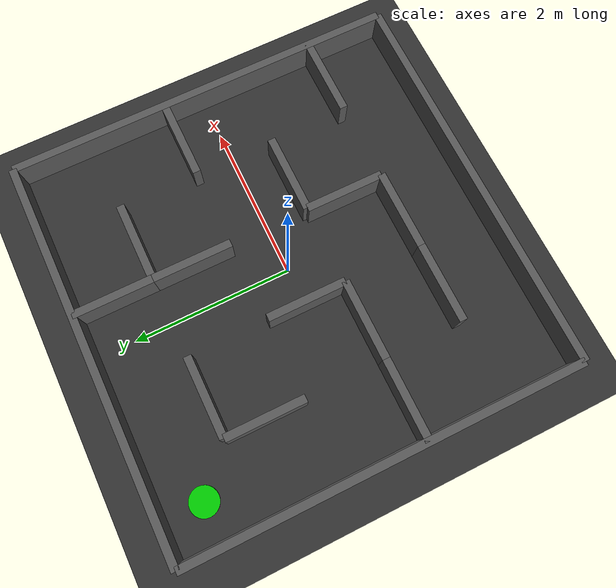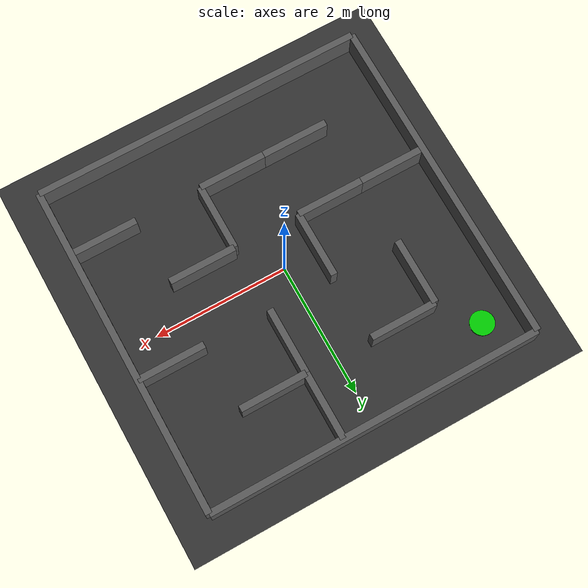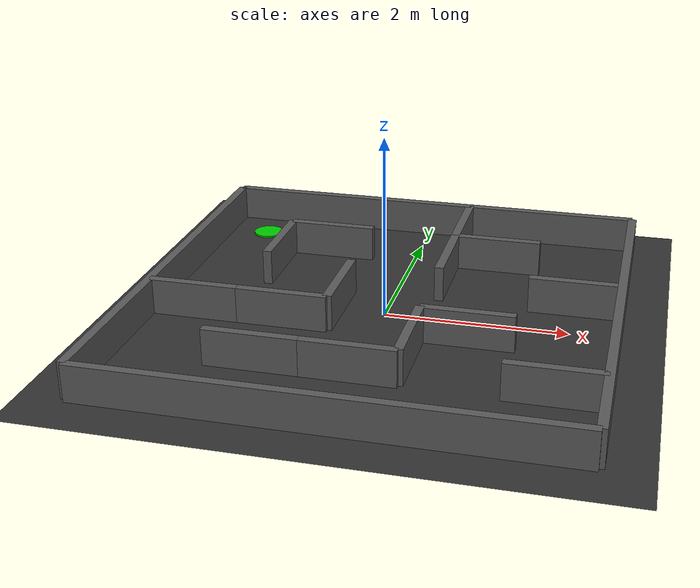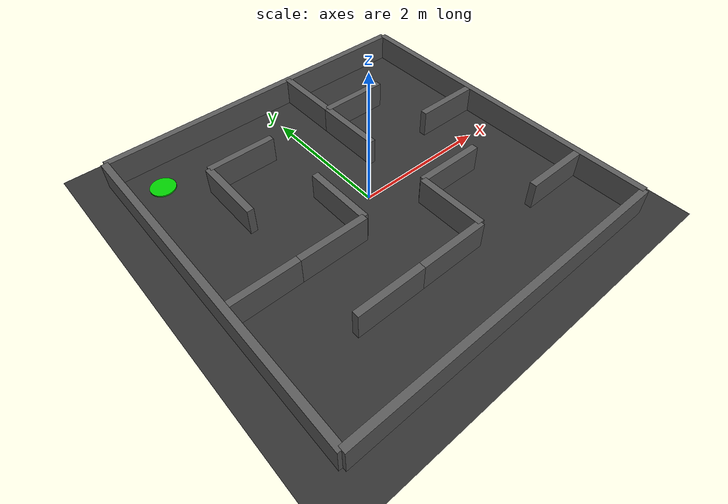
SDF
<?xml version="1.0" ?>
<sdf version="1.6">
  <world name="simple_maze_world">

    <physics name="1ms" type="ignored">
      <max_step_size>0.001</max_step_size>
      <real_time_factor>1.0</real_time_factor>
      <real_time_update_rate>1000</real_time_update_rate>
    </physics>

    <gravity>0 0 -9.8</gravity>
    <magnetic_field>6e-06 2.3e-05 -4.2e-05</magnetic_field>
    <atmosphere type='adiabatic'/>

    <scene>
      <ambient>0.4 0.4 0.4 1</ambient>
      <background>0.7 0.7 0.7 1</background>
      <shadows>true</shadows>
    </scene>

    <light type="directional" name="sun">
      <cast_shadows>true</cast_shadows>
      <pose>0 0 10 0 0 0</pose>
      <diffuse>0.8 0.8 0.8 1</diffuse>
      <specular>0.2 0.2 0.2 1</specular>
      <direction>-0.5 0.1 -0.9</direction>
    </light>

    <model name="ground_plane">
      <static>true</static>
      <link name="link">
        <collision name="collision">
          <geometry><plane><normal>0 0 1</normal><size>20 20</size></plane></geometry>
          <surface><friction><ode/></friction></surface>
        </collision>
        <visual name="visual">
          <geometry><plane><normal>0 0 1</normal><size>20 20</size></plane></geometry>
          <material><ambient>0.2 0.2 0.2 1</ambient><diffuse>0.2 0.2 0.2 1</diffuse></material>
        </visual>
      </link>
    </model>

    <!-- 5x5 maze. Cell size: 1.0 m. Outer bounds: +/-2.5 m. -->
    <!-- Start cell S is centered at (0, 0). Goal cell G is centered at (-2, 2). -->
    <!-- The segment above S at y=0.5, x=[-0.5, 0.5] is intentionally open. -->

    <model name="maze_wall_outer_north"><static>true</static><link name="link"><pose>0 2.5 0.2 0 0 0</pose><collision name="collision"><geometry><box><size>5.0 0.1 0.4</size></box></geometry></collision><visual name="visual"><geometry><box><size>5.0 0.1 0.4</size></box></geometry><material><ambient>0.35 0.35 0.35 1</ambient><diffuse>0.35 0.35 0.35 1</diffuse></material></visual></link></model>
    <model name="maze_wall_outer_south"><static>true</static><link name="link"><pose>0 -2.5 0.2 0 0 0</pose><collision name="collision"><geometry><box><size>5.0 0.1 0.4</size></box></geometry></collision><visual name="visual"><geometry><box><size>5.0 0.1 0.4</size></box></geometry><material><ambient>0.35 0.35 0.35 1</ambient><diffuse>0.35 0.35 0.35 1</diffuse></material></visual></link></model>
    <model name="maze_wall_outer_east"><static>true</static><link name="link"><pose>2.5 0 0.2 0 0 0</pose><collision name="collision"><geometry><box><size>0.1 5.0 0.4</size></box></geometry></collision><visual name="visual"><geometry><box><size>0.1 5.0 0.4</size></box></geometry><material><ambient>0.35 0.35 0.35 1</ambient><diffuse>0.35 0.35 0.35 1</diffuse></material></visual></link></model>
    <model name="maze_wall_outer_west"><static>true</static><link name="link"><pose>-2.5 0 0.2 0 0 0</pose><collision name="collision"><geometry><box><size>0.1 5.0 0.4</size></box></geometry></collision><visual name="visual"><geometry><box><size>0.1 5.0 0.4</size></box></geometry><material><ambient>0.35 0.35 0.35 1</ambient><diffuse>0.35 0.35 0.35 1</diffuse></material></visual></link></model>

    <model name="maze_wall_h_y1p5_xm1"><static>true</static><link name="link"><pose>-1.0 1.5 0.2 0 0 0</pose><collision name="collision"><geometry><box><size>1.0 0.1 0.4</size></box></geometry></collision><visual name="visual"><geometry><box><size>1.0 0.1 0.4</size></box></geometry><material><ambient>0.35 0.35 0.35 1</ambient><diffuse>0.35 0.35 0.35 1</diffuse></material></visual></link></model>
    <model name="maze_wall_h_y1p5_xp1"><static>true</static><link name="link"><pose>1.0 1.5 0.2 0 0 0</pose><collision name="collision"><geometry><box><size>1.0 0.1 0.4</size></box></geometry></collision><visual name="visual"><geometry><box><size>1.0 0.1 0.4</size></box></geometry><material><ambient>0.35 0.35 0.35 1</ambient><diffuse>0.35 0.35 0.35 1</diffuse></material></visual></link></model>

    <model name="maze_wall_h_y0p5_xp2"><static>true</static><link name="link"><pose>2.0 0.5 0.2 0 0 0</pose><collision name="collision"><geometry><box><size>1.0 0.1 0.4</size></box></geometry></collision><visual name="visual"><geometry><box><size>1.0 0.1 0.4</size></box></geometry><material><ambient>0.35 0.35 0.35 1</ambient><diffuse>0.35 0.35 0.35 1</diffuse></material></visual></link></model>

    <model name="maze_wall_h_ym0p5_xm2"><static>true</static><link name="link"><pose>-2.0 -0.5 0.2 0 0 0</pose><collision name="collision"><geometry><box><size>1.0 0.1 0.4</size></box></geometry></collision><visual name="visual"><geometry><box><size>1.0 0.1 0.4</size></box></geometry><material><ambient>0.35 0.35 0.35 1</ambient><diffuse>0.35 0.35 0.35 1</diffuse></material></visual></link></model>
    <model name="maze_wall_h_ym0p5_xm1"><static>true</static><link name="link"><pose>-1.0 -0.5 0.2 0 0 0</pose><collision name="collision"><geometry><box><size>1.0 0.1 0.4</size></box></geometry></collision><visual name="visual"><geometry><box><size>1.0 0.1 0.4</size></box></geometry><material><ambient>0.35 0.35 0.35 1</ambient><diffuse>0.35 0.35 0.35 1</diffuse></material></visual></link></model>
    <model name="maze_wall_h_ym0p5_xp1"><static>true</static><link name="link"><pose>1.0 -0.5 0.2 0 0 0</pose><collision name="collision"><geometry><box><size>1.0 0.1 0.4</size></box></geometry></collision><visual name="visual"><geometry><box><size>1.0 0.1 0.4</size></box></geometry><material><ambient>0.35 0.35 0.35 1</ambient><diffuse>0.35 0.35 0.35 1</diffuse></material></visual></link></model>

    <model name="maze_wall_h_ym1p5_xm1"><static>true</static><link name="link"><pose>-1.0 -1.5 0.2 0 0 0</pose><collision name="collision"><geometry><box><size>1.0 0.1 0.4</size></box></geometry></collision><visual name="visual"><geometry><box><size>1.0 0.1 0.4</size></box></geometry><material><ambient>0.35 0.35 0.35 1</ambient><diffuse>0.35 0.35 0.35 1</diffuse></material></visual></link></model>
    <model name="maze_wall_h_ym1p5_x0"><static>true</static><link name="link"><pose>0.0 -1.5 0.2 0 0 0</pose><collision name="collision"><geometry><box><size>1.0 0.1 0.4</size></box></geometry></collision><visual name="visual"><geometry><box><size>1.0 0.1 0.4</size></box></geometry><material><ambient>0.35 0.35 0.35 1</ambient><diffuse>0.35 0.35 0.35 1</diffuse></material></visual></link></model>
    <model name="maze_wall_h_ym1p5_xp2"><static>true</static><link name="link"><pose>2.0 -1.5 0.2 0 0 0</pose><collision name="collision"><geometry><box><size>1.0 0.1 0.4</size></box></geometry></collision><visual name="visual"><geometry><box><size>1.0 0.1 0.4</size></box></geometry><material><ambient>0.35 0.35 0.35 1</ambient><diffuse>0.35 0.35 0.35 1</diffuse></material></visual></link></model>

    <model name="maze_wall_v_x0p5_y2"><static>true</static><link name="link"><pose>0.5 2.0 0.2 0 0 0</pose><collision name="collision"><geometry><box><size>0.1 1.0 0.4</size></box></geometry></collision><visual name="visual"><geometry><box><size>0.1 1.0 0.4</size></box></geometry><material><ambient>0.35 0.35 0.35 1</ambient><diffuse>0.35 0.35 0.35 1</diffuse></material></visual></link></model>
    <model name="maze_wall_v_x0p5_y1"><static>true</static><link name="link"><pose>0.5 1.0 0.2 0 0 0</pose><collision name="collision"><geometry><box><size>0.1 1.0 0.4</size></box></geometry></collision><visual name="visual"><geometry><box><size>0.1 1.0 0.4</size></box></geometry><material><ambient>0.35 0.35 0.35 1</ambient><diffuse>0.35 0.35 0.35 1</diffuse></material></visual></link></model>
    <model name="maze_wall_v_x0p5_ym1"><static>true</static><link name="link"><pose>0.5 -1.0 0.2 0 0 0</pose><collision name="collision"><geometry><box><size>0.1 1.0 0.4</size></box></geometry></collision><visual name="visual"><geometry><box><size>0.1 1.0 0.4</size></box></geometry><material><ambient>0.35 0.35 0.35 1</ambient><diffuse>0.35 0.35 0.35 1</diffuse></material></visual></link></model>

    <model name="maze_wall_v_xm1p5_y1"><static>true</static><link name="link"><pose>-1.5 1.0 0.2 0 0 0</pose><collision name="collision"><geometry><box><size>0.1 1.0 0.4</size></box></geometry></collision><visual name="visual"><geometry><box><size>0.1 1.0 0.4</size></box></geometry><material><ambient>0.35 0.35 0.35 1</ambient><diffuse>0.35 0.35 0.35 1</diffuse></material></visual></link></model>
    <model name="maze_wall_v_xm0p5_y0"><static>true</static><link name="link"><pose>-0.5 0.0 0.2 0 0 0</pose><collision name="collision"><geometry><box><size>0.1 1.0 0.4</size></box></geometry></collision><visual name="visual"><geometry><box><size>0.1 1.0 0.4</size></box></geometry><material><ambient>0.35 0.35 0.35 1</ambient><diffuse>0.35 0.35 0.35 1</diffuse></material></visual></link></model>

    <model name="goal_marker">
      <static>true</static>
      <link name="link">
        <pose>-2.0 2.0 0.01 0 0 0</pose>
        <visual name="visual">
          <geometry><cylinder><radius>0.18</radius><length>0.02</length></cylinder></geometry>
          <material><ambient>0.0 0.8 0.0 1</ambient><diffuse>0.0 0.8 0.0 1</diffuse></material>
        </visual>
      </link>
    </model>

  </world>
</sdf>
